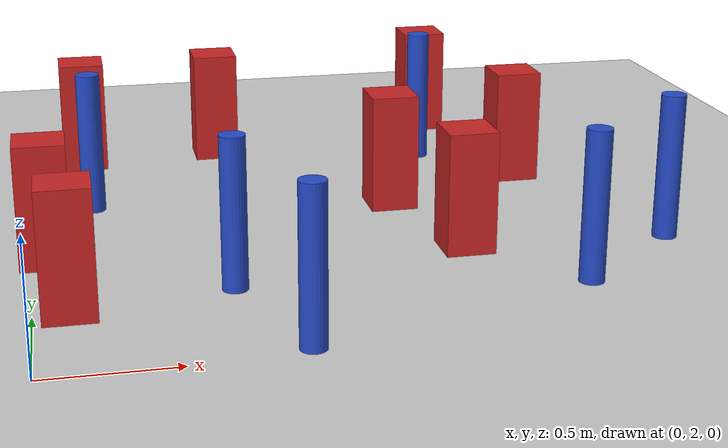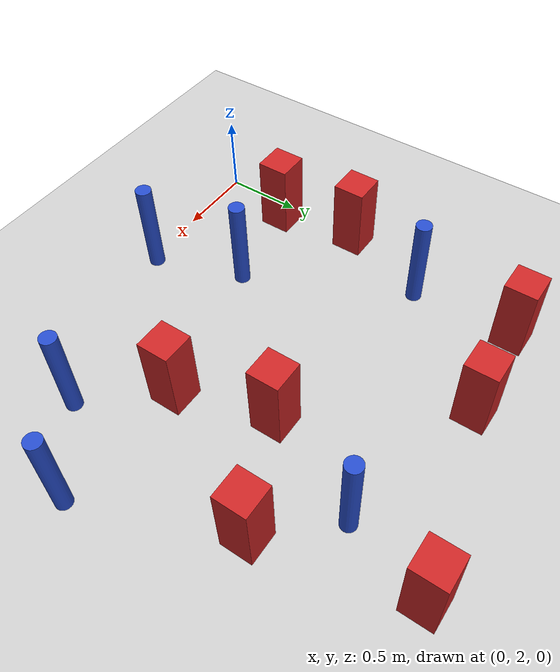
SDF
<sdf version="1.6">
 <world name="default">
  <model name="ground_plane">
   <static>1</static>
   <link name="link">
    <collision name="collision">
     <geometry><plane><normal>0 0 1</normal><size>100 100</size></plane></geometry>
     <surface><friction><ode><mu>100</mu><mu2>50</mu2></ode></friction></surface>
    </collision>
    <visual name="visual">
     <cast_shadows>0</cast_shadows>
     <geometry><plane><normal>0 0 1</normal><size>100 100</size></plane></geometry>
     <material>
      <ambient>1.0 1.0 1.0 1.0</ambient>
      <diffuse>0.8 0.8 0.8 1.0</diffuse>
      <specular>0.01 0.01 0.01 1.000000</specular>
     </material>
    </visual>
   </link>
  </model>
  <model name="pole_obstacle22">
   <static>true</static>
   <pose>2.06500898014 2.41130440198 2.88873142074e-08 -9.90536690232e-09 4.6021994898e-07 -1.20965994968e-07</pose>
   <link name="link">
    <pose>0 0 0.3 0 -0 0</pose>
    <inertial>
     <mass>1</mass>
     <inertia><ixx>0.145833</ixx><ixy>0</ixy><ixz>0</ixz><iyy>0.145833</iyy><iyz>0</iyz><izz>0.125</izz></inertia>
    </inertial>
    <collision name="collision">
     <geometry><cylinder><radius>0.05</radius><length>.6</length></cylinder></geometry>
    </collision>
    <visual name="visual">
     <geometry><cylinder><radius>0.05</radius><length>.6</length></cylinder></geometry>
     <material>
      <script><name>Gazebo/Blue</name><uri>file://media/materials/scripts/gazebo.material</uri></script>
     </material>
    </visual>
   </link>
  </model>
  <model name="pole_obstacle24">
   <static>true</static>
   <pose>1.82298354878 4.08808406498 2.88873142074e-08 -9.90536689852e-09 4.60219948989e-07 -1.2096599496e-07</pose>
   <link name="link">
    <pose>0 0 0.3 0 -0 0</pose>
    <inertial>
     <mass>1</mass>
     <inertia><ixx>0.145833</ixx><ixy>0</ixy><ixz>0</ixz><iyy>0.145833</iyy><iyz>0</iyz><izz>0.125</izz></inertia>
    </inertial>
    <collision name="collision">
     <geometry><cylinder><radius>0.05</radius><length>.6</length></cylinder></geometry>
    </collision>
    <visual name="visual">
     <geometry><cylinder><radius>0.05</radius><length>.6</length></cylinder></geometry>
     <material>
      <script><name>Gazebo/Blue</name><uri>file://media/materials/scripts/gazebo.material</uri></script>
     </material>
    </visual>
   </link>
  </model>
  <model name="square_post_obstacle33">
   <static>true</static>
   <pose>0.0523208939293 3.03171113122 8.22691968438e-08 7.2212513382e-06 -7.54495500217e-07 2.29674213826e-05</pose>
   <link name="link">
    <pose>0 0 0.25 0 -0 0</pose>
    <inertial>
     <mass>100</mass>
     <inertia>
      <ixx>0.166667</ixx>
      <ixy>0</ixy>
      <ixz>0</ixz>
      <iyy>0.166667</iyy>
      <iyz>0</iyz>
      <izz>0.166667</izz>
     </inertia>
    </inertial>
    <collision name="collision"><geometry><box><size>.2 .2 .5</size></box></geometry></collision>
    <visual name="visual">
     <geometry><box><size>.2 .2 .5</size></box></geometry>
     <material>
      <script><name>Gazebo/Red</name><uri>file://media/materials/scripts/gazebo.material</uri></script>
     </material>
    </visual>
   </link>
  </model>
  <model name="pole_obstacle63">
   <static>true</static>
   <pose>0.929581483761 2.04777297678 2.88873142074e-08 -9.90536689995e-09 4.60219948985e-07 -1.20965994962e-07</pose>
   <link name="link">
    <pose>0 0 0.3 0 -0 0</pose>
    <inertial>
     <mass>1</mass>
     <inertia><ixx>0.145833</ixx><ixy>0</ixy><ixz>0</ixz><iyy>0.145833</iyy><iyz>0</iyz><izz>0.125</izz></inertia>
    </inertial>
    <collision name="collision">
     <geometry><cylinder><radius>0.05</radius><length>.6</length></cylinder></geometry>
    </collision>
    <visual name="visual">
     <geometry><cylinder><radius>0.05</radius><length>.6</length></cylinder></geometry>
     <material>
      <script><name>Gazebo/Blue</name><uri>file://media/materials/scripts/gazebo.material</uri></script>
     </material>
    </visual>
   </link>
  </model>
  <model name="square_post_obstacle113">
   <static>true</static>
   <pose>1.52959961261 3.43104803184 8.22691968438e-08 7.2212513382e-06 -7.54495500217e-07 2.29674213826e-05</pose>
   <link name="link">
    <pose>0 0 0.25 0 -0 0</pose>
    <inertial>
     <mass>100</mass>
     <inertia>
      <ixx>0.166667</ixx>
      <ixy>0</ixy>
      <ixz>0</ixz>
      <iyy>0.166667</iyy>
      <iyz>0</iyz>
      <izz>0.166667</izz>
     </inertia>
    </inertial>
    <collision name="collision"><geometry><box><size>.2 .2 .5</size></box></geometry></collision>
    <visual name="visual">
     <geometry><box><size>.2 .2 .5</size></box></geometry>
     <material>
      <script><name>Gazebo/Red</name><uri>file://media/materials/scripts/gazebo.material</uri></script>
     </material>
    </visual>
   </link>
  </model>
  <model name="pole_obstacle135">
   <static>true</static>
   <pose>0.740589111508 2.61106218832 2.88873142074e-08 -9.90536689636e-09 4.60219948994e-07 -1.20965994958e-07</pose>
   <link name="link">
    <pose>0 0 0.3 0 -0 0</pose>
    <inertial>
     <mass>1</mass>
     <inertia><ixx>0.145833</ixx><ixy>0</ixy><ixz>0</ixz><iyy>0.145833</iyy><iyz>0</iyz><izz>0.125</izz></inertia>
    </inertial>
    <collision name="collision">
     <geometry><cylinder><radius>0.05</radius><length>.6</length></cylinder></geometry>
    </collision>
    <visual name="visual">
     <geometry><cylinder><radius>0.05</radius><length>.6</length></cylinder></geometry>
     <material>
      <script><name>Gazebo/Blue</name><uri>file://media/materials/scripts/gazebo.material</uri></script>
     </material>
    </visual>
   </link>
  </model>
  <model name="square_post_obstacle149">
   <static>true</static>
   <pose>1.69820858407 2.85003193875 8.22691968438e-08 7.2212513382e-06 -7.54495500217e-07 2.29674213826e-05</pose>
   <link name="link">
    <pose>0 0 0.25 0 -0 0</pose>
    <inertial>
     <mass>100</mass>
     <inertia>
      <ixx>0.166667</ixx>
      <ixy>0</ixy>
      <ixz>0</ixz>
      <iyy>0.166667</iyy>
      <iyz>0</iyz>
      <izz>0.166667</izz>
     </inertia>
    </inertial>
    <collision name="collision"><geometry><box><size>.2 .2 .5</size></box></geometry></collision>
    <visual name="visual">
     <geometry><box><size>.2 .2 .5</size></box></geometry>
     <material>
      <script><name>Gazebo/Red</name><uri>file://media/materials/scripts/gazebo.material</uri></script>
     </material>
    </visual>
   </link>
  </model>
  <model name="square_post_obstacle150">
   <static>true</static>
   <pose>1.96776913418 4.60192768696 8.22691968438e-08 7.2212513382e-06 -7.54495500217e-07 2.29674213826e-05</pose>
   <link name="link">
    <pose>0 0 0.25 0 -0 0</pose>
    <inertial>
     <mass>100</mass>
     <inertia>
      <ixx>0.166667</ixx>
      <ixy>0</ixy>
      <ixz>0</ixz>
      <iyy>0.166667</iyy>
      <iyz>0</iyz>
      <izz>0.166667</izz>
     </inertia>
    </inertial>
    <collision name="collision"><geometry><box><size>.2 .2 .5</size></box></geometry></collision>
    <visual name="visual">
     <geometry><box><size>.2 .2 .5</size></box></geometry>
     <material>
      <script><name>Gazebo/Red</name><uri>file://media/materials/scripts/gazebo.material</uri></script>
     </material>
    </visual>
   </link>
  </model>
  <model name="pole_obstacle164">
   <static>true</static>
   <pose>2.5342944423 2.8018750995 2.88873142074e-08 -9.90536690232e-09 4.6021994898e-07 -1.20965994968e-07</pose>
   <link name="link">
    <pose>0 0 0.3 0 -0 0</pose>
    <inertial>
     <mass>1</mass>
     <inertia><ixx>0.145833</ixx><ixy>0</ixy><ixz>0</ixz><iyy>0.145833</iyy><iyz>0</iyz><izz>0.125</izz></inertia>
    </inertial>
    <collision name="collision">
     <geometry><cylinder><radius>0.05</radius><length>.6</length></cylinder></geometry>
    </collision>
    <visual name="visual">
     <geometry><cylinder><radius>0.05</radius><length>.6</length></cylinder></geometry>
     <material>
      <script><name>Gazebo/Blue</name><uri>file://media/materials/scripts/gazebo.material</uri></script>
     </material>
    </visual>
   </link>
  </model>
  <model name="pole_obstacle172">
   <static>true</static>
   <pose>0.261448724849 3.61112018632 2.88873142074e-08 -9.9053668968e-09 4.60219948993e-07 -1.20965994959e-07</pose>
   <link name="link">
    <pose>0 0 0.3 0 -0 0</pose>
    <inertial>
     <mass>1</mass>
     <inertia><ixx>0.145833</ixx><ixy>0</ixy><ixz>0</ixz><iyy>0.145833</iyy><iyz>0</iyz><izz>0.125</izz></inertia>
    </inertial>
    <collision name="collision">
     <geometry><cylinder><radius>0.05</radius><length>.6</length></cylinder></geometry>
    </collision>
    <visual name="visual">
     <geometry><cylinder><radius>0.05</radius><length>.6</length></cylinder></geometry>
     <material>
      <script><name>Gazebo/Blue</name><uri>file://media/materials/scripts/gazebo.material</uri></script>
     </material>
    </visual>
   </link>
  </model>
  <model name="square_post_obstacle181">
   <static>true</static>
   <pose>0.132081567931 2.50478969282 8.22691968438e-08 7.2212513382e-06 -7.54495500217e-07 2.29674213826e-05</pose>
   <link name="link">
    <pose>0 0 0.25 0 -0 0</pose>
    <inertial>
     <mass>100</mass>
     <inertia>
      <ixx>0.166667</ixx>
      <ixy>0</ixy>
      <ixz>0</ixz>
      <iyy>0.166667</iyy>
      <iyz>0</iyz>
      <izz>0.166667</izz>
     </inertia>
    </inertial>
    <collision name="collision"><geometry><box><size>.2 .2 .5</size></box></geometry></collision>
    <visual name="visual">
     <geometry><box><size>.2 .2 .5</size></box></geometry>
     <material>
      <script><name>Gazebo/Red</name><uri>file://media/materials/scripts/gazebo.material</uri></script>
     </material>
    </visual>
   </link>
  </model>
  <model name="square_post_obstacle200">
   <static>true</static>
   <pose>2.16918164164 3.71035061086 8.22691968438e-08 7.2212513382e-06 -7.54495500217e-07 2.29674213826e-05</pose>
   <link name="link">
    <pose>0 0 0.25 0 -0 0</pose>
    <inertial>
     <mass>100</mass>
     <inertia>
      <ixx>0.166667</ixx>
      <ixy>0</ixy>
      <ixz>0</ixz>
      <iyy>0.166667</iyy>
      <iyz>0</iyz>
      <izz>0.166667</izz>
     </inertia>
    </inertial>
    <collision name="collision"><geometry><box><size>.2 .2 .5</size></box></geometry></collision>
    <visual name="visual">
     <geometry><box><size>.2 .2 .5</size></box></geometry>
     <material>
      <script><name>Gazebo/Red</name><uri>file://media/materials/scripts/gazebo.material</uri></script>
     </material>
    </visual>
   </link>
  </model>
  <model name="square_post_obstacle219">
   <static>true</static>
   <pose>0.247179032622 4.27026996466 8.22691968438e-08 7.2212513382e-06 -7.54495500217e-07 2.29674213826e-05</pose>
   <link name="link">
    <pose>0 0 0.25 0 -0 0</pose>
    <inertial>
     <mass>100</mass>
     <inertia>
      <ixx>0.166667</ixx>
      <ixy>0</ixy>
      <ixz>0</ixz>
      <iyy>0.166667</iyy>
      <iyz>0</iyz>
      <izz>0.166667</izz>
     </inertia>
    </inertial>
    <collision name="collision"><geometry><box><size>.2 .2 .5</size></box></geometry></collision>
    <visual name="visual">
     <geometry><box><size>.2 .2 .5</size></box></geometry>
     <material>
      <script><name>Gazebo/Red</name><uri>file://media/materials/scripts/gazebo.material</uri></script>
     </material>
    </visual>
   </link>
  </model>
  <model name="square_post_obstacle225">
   <static>true</static>
   <pose>0.871241032622 4.32563996466 8.22691968438e-08 7.2212513382e-06 -7.54495500217e-07 2.29674213826e-05</pose>
   <link name="link">
    <pose>0 0 0.25 0 -0 0</pose>
    <inertial>
     <mass>100</mass>
     <inertia>
      <ixx>0.166667</ixx>
      <ixy>0</ixy>
      <ixz>0</ixz>
      <iyy>0.166667</iyy>
      <iyz>0</iyz>
      <izz>0.166667</izz>
     </inertia>
    </inertial>
    <collision name="collision"><geometry><box><size>.2 .2 .5</size></box></geometry></collision>
    <visual name="visual">
     <geometry><box><size>.2 .2 .5</size></box></geometry>
     <material>
      <script><name>Gazebo/Red</name><uri>file://media/materials/scripts/gazebo.material</uri></script>
     </material>
    </visual>
   </link>
  </model>
 </world>
</sdf>
